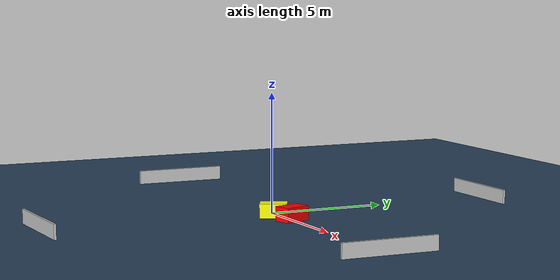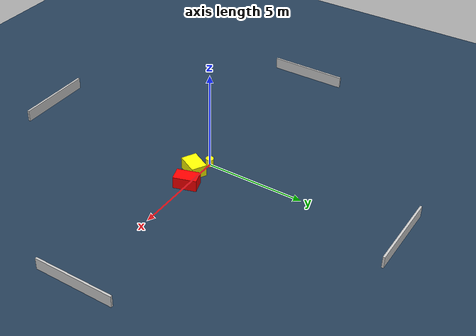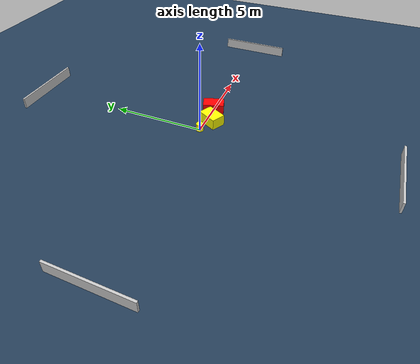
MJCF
<?xml version="1.0" ?>
<mujoco model="generated_environment">
  <option timestep="0.01" integrator="RK4" cone="elliptic"/>
  <default>
    <geom density="1"/>
  </default>
  <asset>
    <texture builtin="gradient" height="3072" name="skybox" rgb1="0.3 0.5 0.7" rgb2="0 0 0" type="skybox" width="512"/>
    <texture builtin="checker" height="300" name="groundplane" rgb1="0.2 0.3 0.4" rgb2="0.1 0.2 0.3" type="2d" width="300"/>
    <material name="groundplane" reflectance="0.2" texrepeat="5 5" texture="groundplane"/>
  </asset>
  <worldbody>
    <light dir="0 0 -1" directional="true" pos="0 0 1.5"/>
    <geom condim="3" friction="0.5 0.005 0.001" material="groundplane" name="floor" pos="0 0 0" size="0 0 0.05" type="plane"/>
    <body name="walls">
      <geom name="wall_1" condim="4" pos="-10.0 0.0 0.3" rgba="0.800000011920929 0.800000011920929 0.800000011920929 1.0" size="0.05 2.0 0.3" type="box"/>
      <geom name="wall_2" condim="4" pos="10.0 0.0 0.3" rgba="0.800000011920929 0.800000011920929 0.800000011920929 1.0" size="0.05 2.0 0.3" type="box"/>
      <geom name="wall_3" condim="4" pos="0.0 -10.0 0.3" rgba="0.800000011920929 0.800000011920929 0.800000011920929 1.0" size="2.0 0.05 0.3" type="box"/>
      <geom name="wall_4" condim="4" pos="0.0 10.0 0.3" rgba="0.800000011920929 0.800000011920929 0.800000011920929 1.0" size="2.0 0.05 0.3" type="box"/>
    </body>
    <body name="robot">
      <joint name="joint_x" type="slide" pos="0 0 0" axis="1 0 0"/>
      <joint name="joint_y" type="slide" pos="0 0 0" axis="0 1 0"/>
      <geom name="robot" type="cylinder" pos="0.0 0.0 0.2" size="0.2 0.2 0.0" mass="5.0" friction="1.0 0.005 0.0001" condim="4" rgba="1.0 1.0 0.0 1.0"/>
    </body>
    <body name="obstacle_1_movable">
      <geom name="obstacle_1_movable" condim="4" pos="0.8562192529679348 -0.3342993826757207 0.3" euler="0 0 332.0779307816707" friction="0.0 0.005 0.001" rgba="1.0 1.0 0.0 1.0" size="0.3936314581688293 0.559246279571923 0.3" type="box" mass="0.1"/>
      <joint type="free"/>
    </body>
    <body name="obstacle_2_static">
      <geom name="obstacle_2_static" condim="4" pos="1.9347858878685265 -0.0197982090089349 0.3" euler="0 0 197.60151333218488" friction="0.0 0.005 0.001" rgba="1.0 0.0 0.0 1.0" size="0.3589722720358996 0.5741256772745991 0.3" type="box"/>
    </body>
  </worldbody>
  <actuator>
    <motor name="actuator_x" joint="joint_x" gear="1" ctrlrange="-1 1"/>
    <motor name="actuator_y" joint="joint_y" gear="1" ctrlrange="-1 1"/>
  </actuator>
</mujoco>
